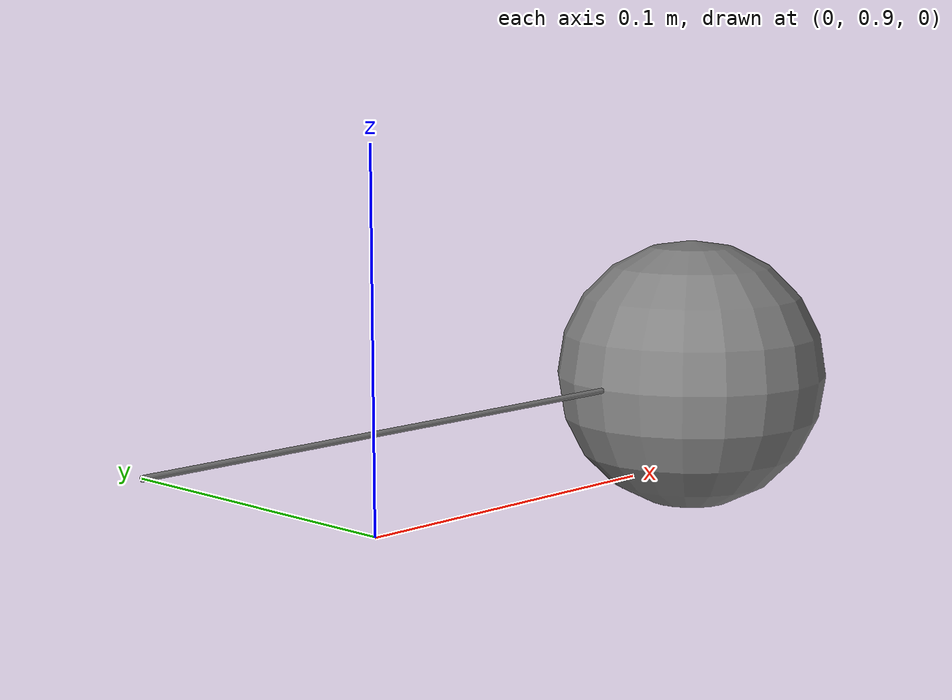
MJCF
<mujoco model="ideal_pendulum">
  <option gravity="0 -9.81 0" />

  <worldbody>
    <light diffuse=".5 .5 .5" pos="0 0 3" dir="0 0 -1"/>

    <body name="pendulum" pos="0 1 0">
      <joint name="hinge" type="hinge" axis="0 0 1" damping="0" frictionloss="0"/>
      <!-- Rod: Length 0.2485m, Mass 0. Using a cylinder for the rod. -->
      <geom name="rod" type="cylinder" fromto="0 0 0 0.2485 0 0" size="0.001 0.12425" mass="0" contype="0" conaffinity="0"/>
      <!-- Bob: Sphere, Diameter 0.1m (radius 0.05m), Mass 1.0kg. Positioned at end of rod. -->
      <geom name="bob" type="sphere" size="0.05" mass="1.0" pos="0.2485 0 0"/>
    </body>
  </worldbody>

  <sensor>
    <jointpos joint="hinge" name="angle"/>
    <jointvel joint="hinge" name="velocity"/>
  </sensor>
</mujoco>
